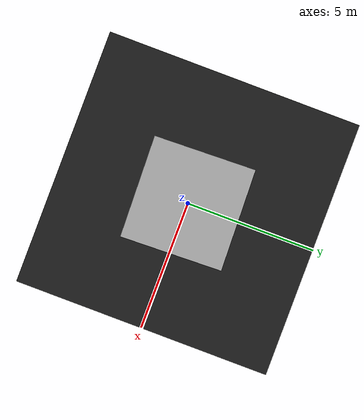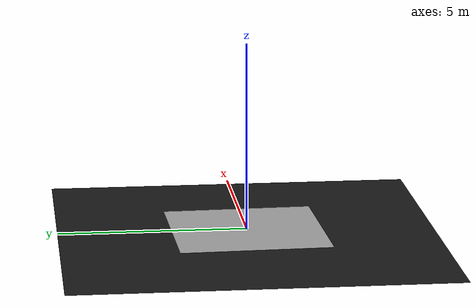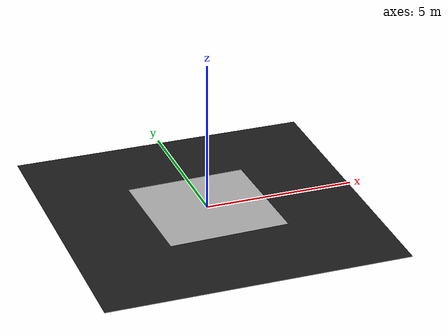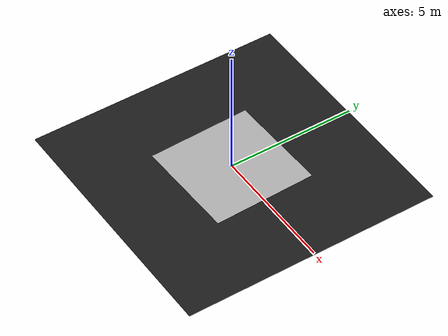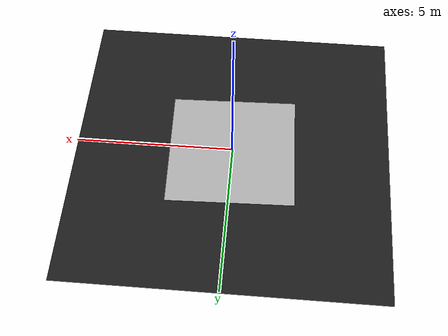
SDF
<sdf version="1.7">
 <world name="default">
  <scene>
   <ambient>0 0 0 1</ambient>
   <shadows>0</shadows>
   <grid>0</grid>
   <background>0.7 0.7 0.7 1</background>
  </scene>
  <model name="course">
   <static>1</static>
   <link name="course_link">
    <collision name="course_collision">
     <geometry><plane><normal>0 0 1</normal><size>4 4</size></plane></geometry>
     <surface><friction><ode><mu>100</mu><mu2>50</mu2></ode></friction></surface>
    </collision>
    <visual name="course_visual">
     <cast_shadows>0</cast_shadows>
     <geometry><plane><normal>0 0 1</normal><size>4 4</size></plane></geometry>
     <material>
      <script>
       <uri>model://turtlebot3_autorace/course/materials/scripts</uri>
       <uri>model://turtlebot3_autorace/course/materials/textures</uri>
       <name>course</name>
      </script>
     </material>
    </visual>
   </link>
   <pose>0 0 0 0 0 -1.54</pose>
  </model>
  <light name="sun" type="directional">
   <pose>0 0 10 0 -0 0</pose>
   <diffuse>0.8 0.8 0.8 1</diffuse>
   <specular>0.1 0.1 0.1 1</specular>
   <attenuation>
    <range>1000</range>
    <constant>0.9</constant>
    <linear>0.01</linear>
    <quadratic>0.001</quadratic>
   </attenuation>
   <direction>-0.5 0.5 -1</direction>
   <spot><inner_angle>0</inner_angle><outer_angle>0</outer_angle><falloff>0</falloff></spot>
  </light>
  <model name="ground2">
   <pose>0 0 -0.1 0 -0 0</pose>
   <static>1</static>
   <link name="ground">
    <collision name="ground_coll"><geometry><box><size>8 8 0.01</size></box></geometry></collision>
    <visual name="ground_vis">
     <geometry><box><size>10 10 0.01</size></box></geometry>
     <material>
      <script><uri>file://media/materials/scripts/gazebo.material</uri><name>Gazebo/FlatBlack</name></script>
     </material>
    </visual>
   </link>
  </model>
  <gravity>0 0 -9.8</gravity>
  <magnetic_field>6e-06 2.3e-05 -4.2e-05</magnetic_field>
  <atmosphere type="adiabatic"/>
  <physics name="default_physics" default="0" type="ode">
   <max_step_size>0.001</max_step_size>
   <real_time_factor>1</real_time_factor>
   <real_time_update_rate>1000</real_time_update_rate>
  </physics>
  <spherical_coordinates>
   <surface_model>EARTH_WGS84</surface_model>
   <latitude_deg>0</latitude_deg>
   <longitude_deg>0</longitude_deg>
   <elevation>0</elevation>
   <heading_deg>0</heading_deg>
  </spherical_coordinates>
  <light name="user_point_light_2" type="point">
   <pose>-0.948146 0.604519 1 0 -0 0</pose>
   <diffuse>0.5 0.5 0.5 1</diffuse>
   <specular>0.1 0.1 0.1 1</specular>
   <attenuation>
    <range>20</range>
    <constant>0.5</constant>
    <linear>0.01</linear>
    <quadratic>0.001</quadratic>
   </attenuation>
   <cast_shadows>0</cast_shadows>
   <direction>0 0 -1</direction>
   <spot><inner_angle>0</inner_angle><outer_angle>0</outer_angle><falloff>0</falloff></spot>
  </light>
  <light name="user_point_light_6" type="point">
   <pose>1.63854 1.69565 1 0 -0 0</pose>
   <diffuse>0.5 0.5 0.5 1</diffuse>
   <specular>0.1 0.1 0.1 1</specular>
   <attenuation>
    <range>20</range>
    <constant>0.5</constant>
    <linear>0.01</linear>
    <quadratic>0.001</quadratic>
   </attenuation>
   <cast_shadows>0</cast_shadows>
   <direction>0 0 -1</direction>
   <spot><inner_angle>0</inner_angle><outer_angle>0</outer_angle><falloff>0</falloff></spot>
  </light>
  <light name="user_point_light_7" type="point">
   <pose>0.42 -3.31 1 0 -0 0</pose>
   <diffuse>0.5 0.5 0.5 1</diffuse>
   <specular>0.1 0.1 0.1 1</specular>
   <attenuation>
    <range>20</range>
    <constant>0.5</constant>
    <linear>0.01</linear>
    <quadratic>0.001</quadratic>
   </attenuation>
   <cast_shadows>0</cast_shadows>
   <direction>0 0 -1</direction>
   <spot><inner_angle>0</inner_angle><outer_angle>0</outer_angle><falloff>0</falloff></spot>
  </light>
  <light name="user_point_light_8" type="point">
   <pose>-1.8 1.5 1 0 -0 0</pose>
   <diffuse>0.5 0.5 0.5 1</diffuse>
   <specular>0.1 0.1 0.1 1</specular>
   <attenuation>
    <range>20</range>
    <constant>0.5</constant>
    <linear>0.01</linear>
    <quadratic>0.001</quadratic>
   </attenuation>
   <cast_shadows>0</cast_shadows>
   <direction>0 0 -1</direction>
   <spot><inner_angle>0</inner_angle><outer_angle>0</outer_angle><falloff>0</falloff></spot>
  </light>
 </world>
</sdf>
